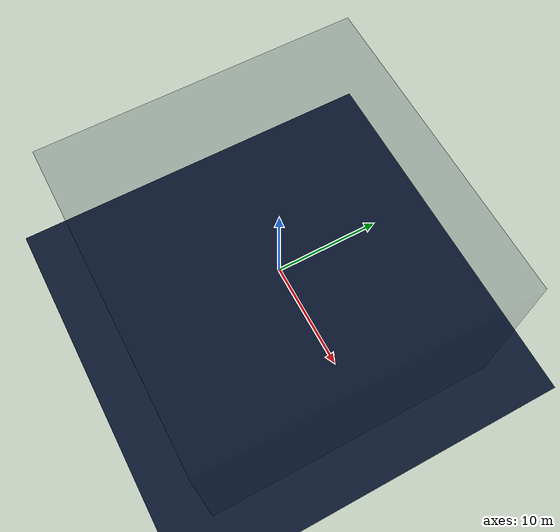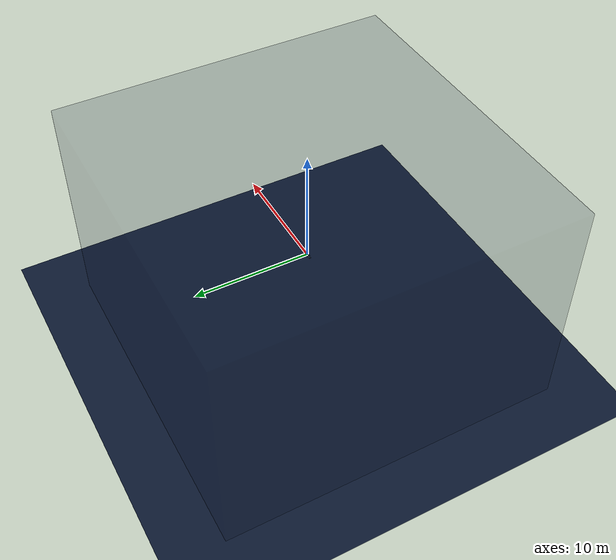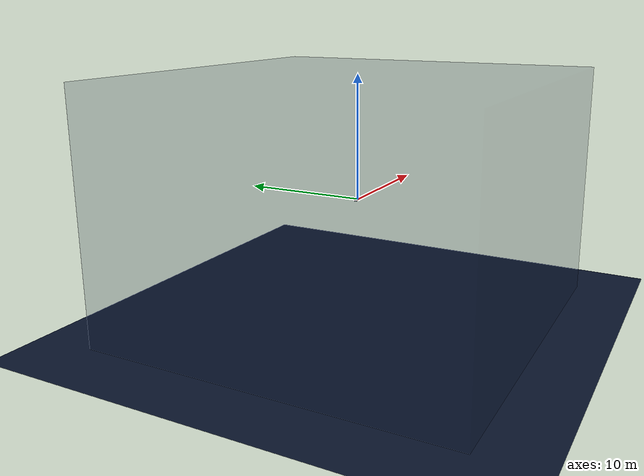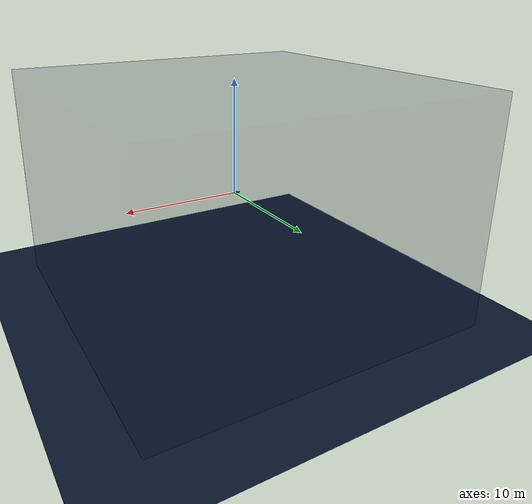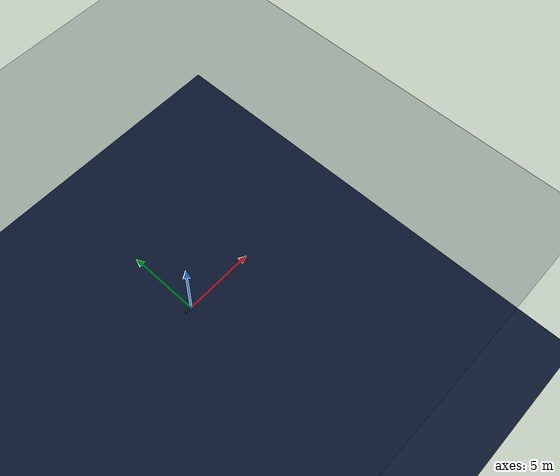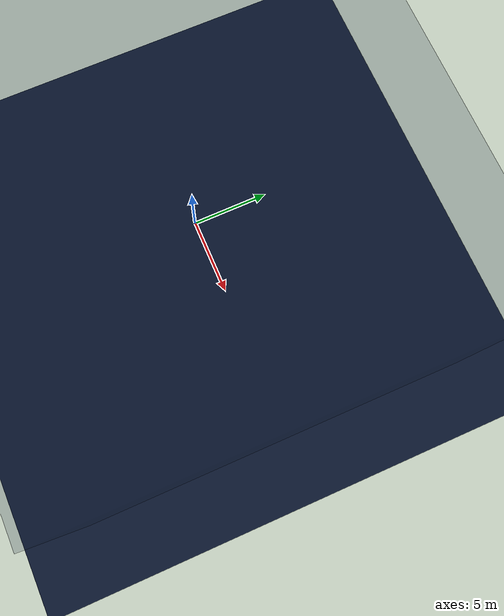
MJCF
<mujoco model="halcyon">

  <!-- ── Compiler ─────────────────────────────────────────────── -->
  <compiler angle="radian" autolimits="true"/>

  <!-- ── Physics options ──────────────────────────────────────── -->
  <option
    timestep    = "0.01"
    gravity     = "0 0 0"
    density     = "1000"
    viscosity   = "0.001"
    integrator  = "RK4"
    solver      = "Newton"
    iterations  = "50"
    tolerance   = "1e-10">
    <!-- gravity=0: buoyancy applied manually per-step in Python env -->
    <!-- density/viscosity: water properties (informational, drag is manual) -->
  </option>

  <!-- ── Visual settings ──────────────────────────────────────── -->
  <visual>
    <headlight ambient="0.4 0.5 0.6" diffuse="0.6 0.7 0.8" specular="0.1 0.1 0.1"/>
    <rgba haze="0.05 0.1 0.2 1"/>
    <!-- deep blue-green underwater atmosphere -->
  </visual>

  <!-- ── Assets: materials ────────────────────────────────────── -->
  <asset>
    <material name="hull"     rgba="0.15 0.22 0.35 1.0" shininess="0.8" specular="0.6"/>
    <material name="thruster" rgba="0.25 0.30 0.40 1.0" shininess="0.5" specular="0.4"/>
    <material name="fin"      rgba="0.10 0.18 0.28 1.0" shininess="0.3" specular="0.2"/>
    <material name="nose"     rgba="0.20 0.55 0.65 1.0" shininess="0.9" specular="0.7"/>
    <!-- nose: teal accent — visually distinctive in figures -->
    <material name="target"   rgba="0.15 0.85 0.55 0.6" shininess="0.2" specular="0.1"/>
    <material name="water"    rgba="0.02 0.08 0.18 0.15" shininess="0.0" specular="0.0"/>
  </asset>

  <!-- ── Defaults ──────────────────────────────────────────────── -->
  <default>
    <joint type="free" limited="false" damping="0.01" armature="0.001"/>
    <geom contype="1" conaffinity="1" condim="3" friction="0.4 0.01 0.01"/>
    <motor ctrllimited="true" ctrlrange="-1 1" gear="20"/>
    <!-- gear="20": 20N max thrust per thruster when ctrl=1 -->
  </default>

  <!-- ── World ─────────────────────────────────────────────────── -->
  <worldbody>

    <!-- Ocean volume (visual only, no collision) -->
    <geom name  = "ocean_volume"
          type  = "box"
          size  = "15 15 10"
          pos   = "0 0 0"
          contype = "0" conaffinity = "0"
          material= "water"
          group   = "2"/>

    <!-- Subtle grid floor for spatial reference -->
    <geom name     = "floor"
          type     = "plane"
          size     = "20 20 0.1"
          pos      = "0 0 -10"
          contype  = "0" conaffinity = "0"
          rgba     = "0.05 0.1 0.2 0.4"
          group    = "2"/>

    <!-- ── Halcyon body ──────────────────────────────────────── -->
    <body name="halcyon" pos="0 0 0" euler="0 0 0">

      <!-- Free joint — full 6-DOF motion in world space -->
      <joint name="root" type="free"/>

      <!-- Main hull: prolate spheroid approximated as scaled ellipsoid -->
      <!-- size = half-lengths along x,y,z axes -->
      <geom name     = "hull_main"
            type     = "ellipsoid"
            size     = "0.45 0.07 0.07"
            pos      = "0.0 0 0"
            material = "hull"
            mass     = "10.0"
            group    = "1"/>

      <!-- Nose cap: smaller ellipsoid for the pointed bow -->
      <geom name     = "nose"
            type     = "ellipsoid"
            size     = "0.12 0.065 0.065"
            pos      = "0.48 0 0"
            material = "nose"
            mass     = "0.5"
            group    = "1"/>

      <!-- Tail fairing: small cylinder blending hull to thruster ring -->
      <geom name     = "tail_fairing"
            type     = "cylinder"
            size     = "0.04 0.06"
            pos      = "-0.44 0 0"
            euler    = "0 1.5708 0"
            material = "hull"
            mass     = "0.3"
            group    = "1"/>

      <!-- ── Dorsal fin (top stabiliser) ──────────────────── -->
      <geom name     = "fin_dorsal"
            type     = "box"
            size     = "0.12 0.006 0.055"
            pos      = "-0.15 0 0.072"
            material = "fin"
            mass     = "0.1"
            group    = "1"/>

      <!-- ── Ventral fin (bottom stabiliser) ──────────────── -->
      <geom name     = "fin_ventral"
            type     = "box"
            size     = "0.12 0.006 0.055"
            pos      = "-0.15 0 -0.072"
            material = "fin"
            mass     = "0.1"
            group    = "1"/>

      <!-- ── Port fin (left stabiliser) ───────────────────── -->
      <geom name     = "fin_port"
            type     = "box"
            size     = "0.12 0.055 0.006"
            pos      = "-0.15 0.072 0"
            material = "fin"
            mass     = "0.1"
            group    = "1"/>

      <!-- ── Starboard fin (right stabiliser) ─────────────── -->
      <geom name     = "fin_starboard"
            type     = "box"
            size     = "0.12 0.055 0.006"
            pos      = "-0.15 -0.072 0"
            material = "fin"
            mass     = "0.1"
            group    = "1"/>

      <!-- ── Thruster housings (visual cylinders) ──────────── -->
      <!-- Top thruster housing: +Z offset, -45° from top -->
      <geom name     = "housing_top"
            type     = "cylinder"
            size     = "0.022 0.055"
            pos      = "-0.46 0 0.055"
            euler    = "0 1.5708 0"
            material = "thruster"
            mass     = "0.25"
            group    = "1"/>

      <!-- Bottom thruster housing -->
      <geom name     = "housing_bot"
            type     = "cylinder"
            size     = "0.022 0.055"
            pos      = "-0.46 0 -0.055"
            euler    = "0 1.5708 0"
            material = "thruster"
            mass     = "0.25"
            group    = "1"/>

      <!-- Left thruster housing -->
      <geom name     = "housing_left"
            type     = "cylinder"
            size     = "0.022 0.055"
            pos      = "-0.46 0.055 0"
            euler    = "0 1.5708 0"
            material = "thruster"
            mass     = "0.25"
            group    = "1"/>

      <!-- Right thruster housing -->
      <geom name     = "housing_right"
            type     = "cylinder"
            size     = "0.022 0.055"
            pos      = "-0.46 -0.055 0"
            euler    = "0 1.5708 0"
            material = "thruster"
            mass     = "0.25"
            group    = "1"/>

      <!-- ── Thruster sites (force application points) ─────── -->
      <!-- Forces applied here by Python env each step          -->
      <!-- Axis = +X (forward) — negative ctrl = reverse thrust -->

      <site name="thruster_top"
            pos ="-0.52 0 0.055"
            size="0.015"
            rgba="0.2 0.9 0.5 0.8"/>

      <site name="thruster_bot"
            pos ="-0.52 0 -0.055"
            size="0.015"
            rgba="0.2 0.9 0.5 0.8"/>

      <site name="thruster_left"
            pos ="-0.52 0.055 0"
            size="0.015"
            rgba="0.2 0.9 0.5 0.8"/>

      <site name="thruster_right"
            pos ="-0.52 -0.055 0"
            size="0.015"
            rgba="0.2 0.9 0.5 0.8"/>

      <!-- Centre of mass site (for sensor reference) -->
      <site name="com" pos="0 0 0" size="0.01" rgba="1 0.3 0.3 0.5"/>

      <!-- Nose sensor site -->
      <site name="nose_tip" pos="0.60 0 0" size="0.008" rgba="0.2 0.8 0.9 0.6"/>

      <!-- ── Sensors ─────────────────────────────────────── -->
      <!-- All sensor data available in env via data.sensordata -->

    </body><!-- /halcyon -->

    <!-- ── Goal marker (moved to target pos in Python env) ──── -->
    <body name="goal" pos="5 0 0">
      <geom name     = "goal_sphere"
            type     = "sphere"
            size     = "0.15"
            contype  = "0" conaffinity = "0"
            material = "target"
            group    = "1"/>
      <site name="goal_site" pos="0 0 0" size="0.02" rgba="0.1 1.0 0.5 1.0"/>
    </body>

    <!-- ── Lights ──────────────────────────────────────────── -->
    <light name="sun"     pos="0 0 8"  dir="0 0 -1" diffuse="0.6 0.7 0.8" specular="0.2 0.2 0.2"/>
    <light name="ambient" pos="0 0 5"  dir="0 0 -1" diffuse="0.2 0.3 0.4" specular="0.0 0.0 0.0"/>

    <!-- ── Camera ──────────────────────────────────────────── -->
    <camera name="track"   mode="trackcom" target="halcyon" pos="3 -3 2"  euler="0 0.5 0.8"/>
    <camera name="side"    mode="trackcom" target="halcyon" pos="0 -4 0"  euler="0 0 1.5708"/>
    <camera name="top"     mode="trackcom" target="halcyon" pos="0 0 5"   euler="0 0 0"/>
    <camera name="follow"  mode="trackcom" target="halcyon" pos="-2 0 0.5" euler="0 0.2 0"/>

  </worldbody>

  <!-- ── Actuators ─────────────────────────────────────────────── -->
  <actuator>
    <motor name="thrust_top"   site="thruster_top"   gear="20 0 0 0 0 0" ctrllimited="true" ctrlrange="-1 1"/>
    <motor name="thrust_bot"   site="thruster_bot"   gear="20 0 0 0 0 0" ctrllimited="true" ctrlrange="-1 1"/>
    <motor name="thrust_left"  site="thruster_left"  gear="20 0 0 0 0 0" ctrllimited="true" ctrlrange="-1 1"/>
    <motor name="thrust_right" site="thruster_right" gear="20 0 0 0 0 0" ctrllimited="true" ctrlrange="-1 1"/>
  </actuator>

  <!-- ── Sensors ───────────────────────────────────────────────── -->
  <sensor>
    <!-- Position and velocity of hull body -->
    <framepos   name="pos"      objtype="body" objname="halcyon"/>
    <framequat  name="quat"     objtype="body" objname="halcyon"/>
    <framelinvel name="linvel"  objtype="body" objname="halcyon"/>
    <frameangvel name="angvel"  objtype="body" objname="halcyon"/>
    <!-- Accelerometer at CoM -->
    <accelerometer name="accel" site="com"/>
    <!-- Gyroscope at CoM -->
    <gyro          name="gyro"  site="com"/>
  </sensor>

</mujoco>
